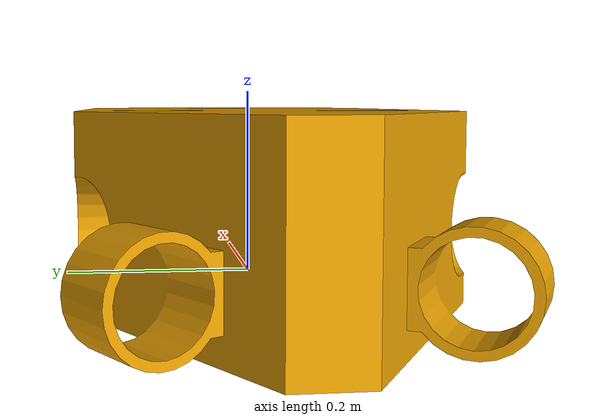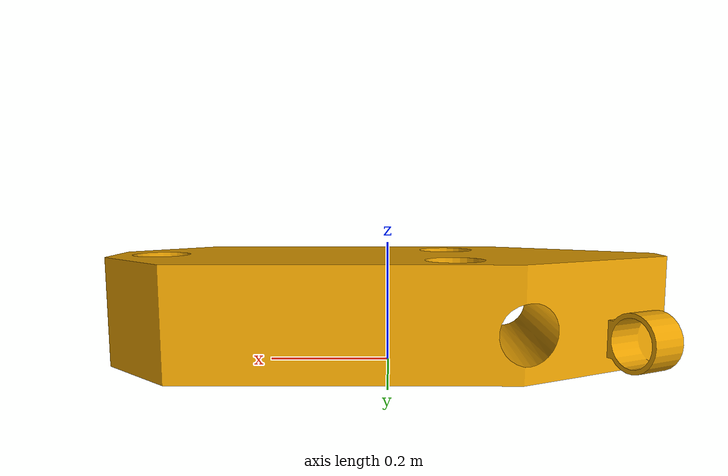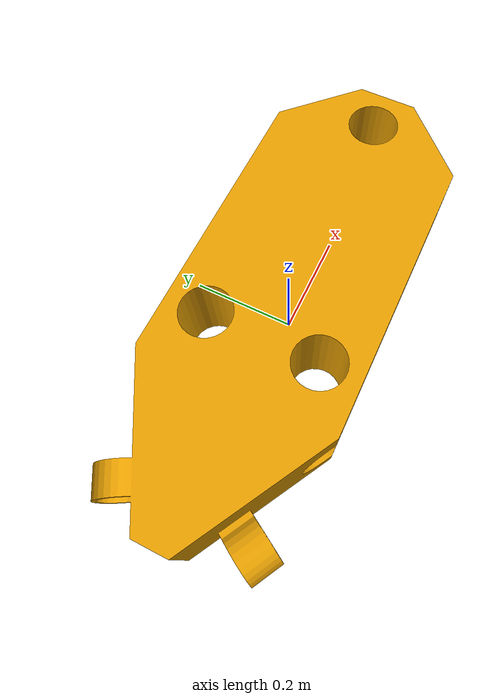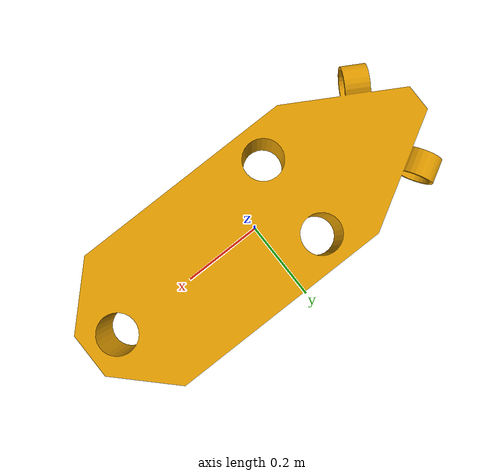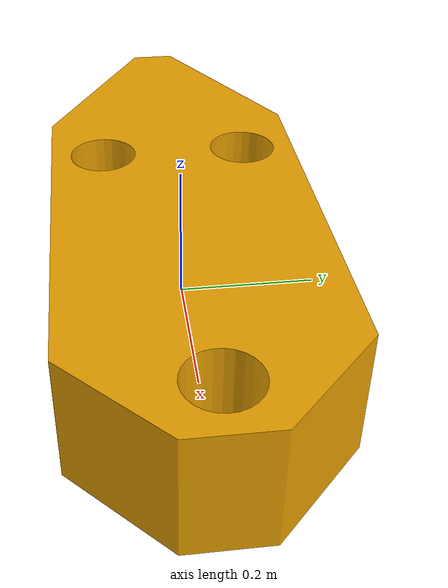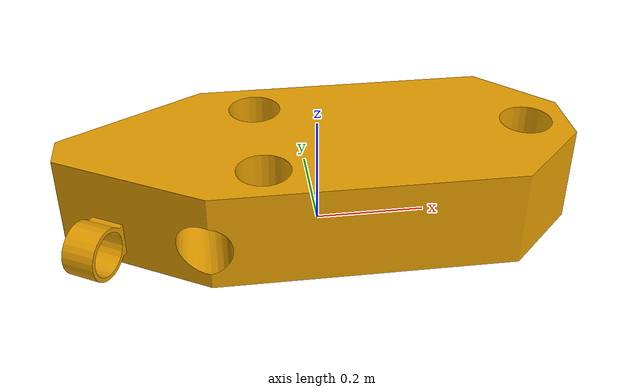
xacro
<?xml version="1.0"?>
<robot name="race" xmlns:xacro="http://ros.org/wiki/xacro">

    <link name="base_link">
        <visual>
            <origin xyz="0.456 0.0 0.0" rpy="3.1415926 0.0 0.0"/>
            <geometry>
                <mesh filename="package://race_description/mesh/RACE_body.obj" scale="0.001 0.001 0.001"/>
            </geometry>
        </visual>
    </link>

    <link name="cg_link"/>
    <joint name="cg_joint" type="fixed">
        <origin xyz="0.0 0.0 0.0" rpy="3.1415926 0.0 0.0"/>
        <parent link="base_link"/>
        <child link="cg_link"/>
    </joint>

    <link name="imu"/>
    <joint name="imu_joint" type="fixed">
        <origin xyz="0.0 0.0 0.12" rpy="0.0 0.0 0.0"/>
        <parent link="base_link"/>
        <child link="imu"/>
    </joint>

    <link name="imu_sf"/>
    <joint name="imu__sf_joint" type="fixed">
        <origin xyz="0.0 0.0 0.0" rpy="0.0 0.0 0.0"/>
        <parent link="imu"/>
        <child link="imu_sf"/>
    </joint>

    <link name="dvl"/>
    <joint name="dvl_joint" type="fixed">
        <origin xyz="0.0 0.0 -0.09" rpy="3.1415926 0.0 0.0"/>
        <parent link="base_link"/>
        <child link="dvl"/>
    </joint>

    <link name="dvl_sf"/>
    <joint name="dvl_sf_joint" type="fixed">
        <origin xyz="-0.00 0.0 -0.09" rpy="0.0 0.0 0.0"/>
        <parent link="base_link"/>
        <child link="dvl_sf"/>
    </joint>

    <link name="gps"/>
    <joint name="gps_joint" type="fixed">
        <origin xyz="0.22 -0.1 0.4" rpy="0.0 0.0 0.0"/>
        <parent link="base_link"/>
        <child link="gps"/>
    </joint>

    <link name="pressure"/>
    <joint name="pressure_joint" type="fixed">
        <origin xyz="0.2 0.0 -0.09" rpy="3.1415926 0.0 0.0"/>
        <parent link="base_link"/>
        <child link="pressure"/>
    </joint>

    <link name="camera"/>
    <joint name="camera_joint" type="fixed">
        <origin xyz="0.3 0.23 -0.05" rpy="3.1415926 0.0 0.0"/>
        <parent link="base_link"/>
        <child link="camera"/>
    </joint>

    <!-- thrusters -->
    <link name="sway_stern_thruster_link"/>
    <joint name="sway_stern_thruster_joint" type="fixed">
        <origin xyz="-0.29 0.0 -0.07535" rpy="3.1415926 0.0 -1.571"/>
        <parent link="base_link"/>
        <child link="sway_stern_thruster_link"/>
    </joint>

    <link name="heave_bow_thruster_link"/>
    <joint name="heave_bow_thruster_joint" type="fixed">
        <origin xyz="0.3 0.0 -0.07535" rpy="3.1415926 1.571 0.0"/>
        <parent link="base_link"/>
        <child link="heave_bow_thruster_link"/>
    </joint>

    <link name="heave_stern_port_thruster_link"/>
    <joint name="heave_stern_port_thruster_joint" type="fixed">
        <origin xyz="-0.19 0.1034 -0.07535" rpy="-1.571 1.571 0.0"/>
        <parent link="base_link"/>
        <child link="heave_stern_port_thruster_link"/>
    </joint>

    <link name="heave_stern_stdb_thruster_link"/>
    <joint name="heave_stern_stdb_thruster_joint" type="fixed">
        <origin xyz="-0.19 -0.1034 -0.07535" rpy="1.571 1.571 0.0"/>
        <parent link="base_link"/>
        <child link="heave_stern_stdb_thruster_link"/>
    </joint>

    <link name="surge_port_thruster_link"/>
    <joint name="surge_port_thruster_joint" type="fixed">
        <origin xyz="-0.41 0.125 0.01" rpy="1.571 0.0 0.52"/>

        <parent link="base_link"/>
        <child link="surge_port_thruster_link"/>
    </joint>

    <link name="surge_stdb_thruster_link"/>
    <joint name="surge_stdb_thruster_joint" type="fixed">
        <origin xyz="-0.41 -0.125 0.01" rpy="-1.571 0.0 -0.52"/>
        <parent link="base_link"/>
        <child link="surge_stdb_thruster_link"/>
    </joint>

</robot>
